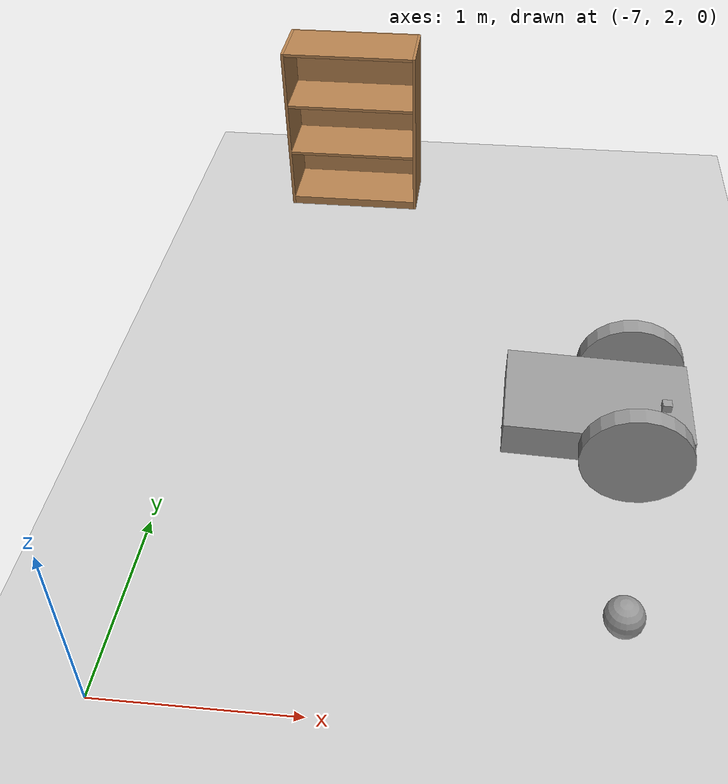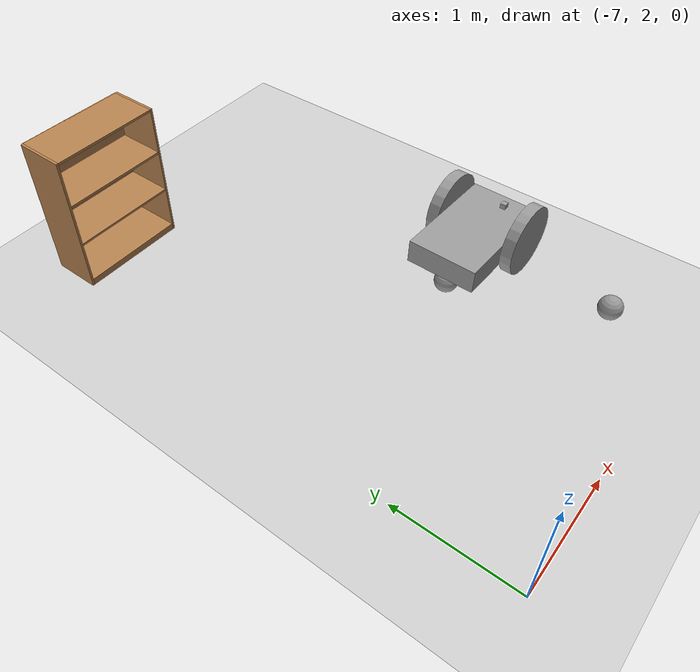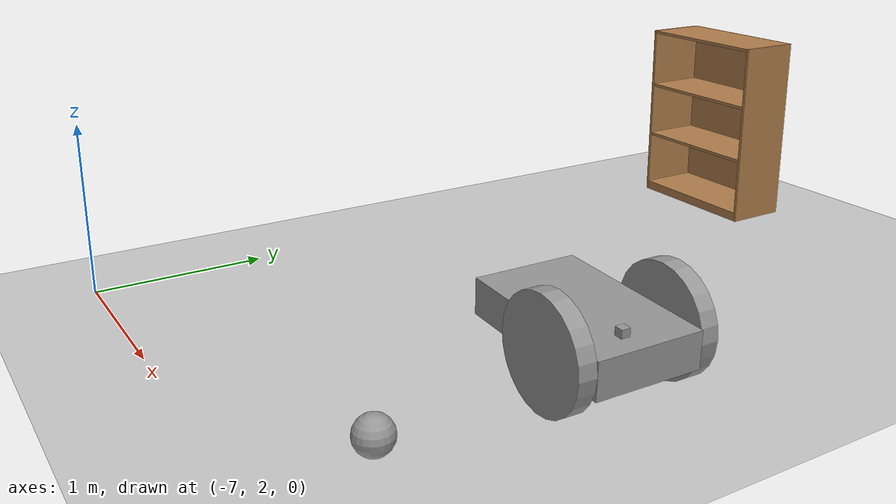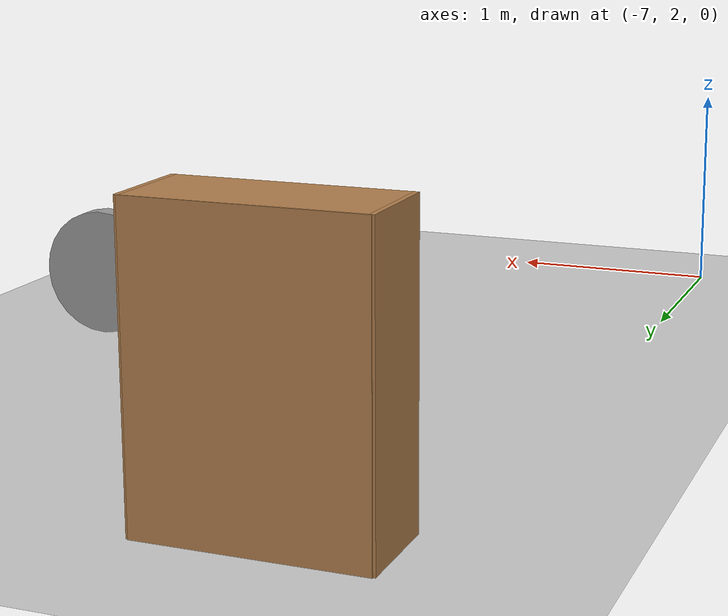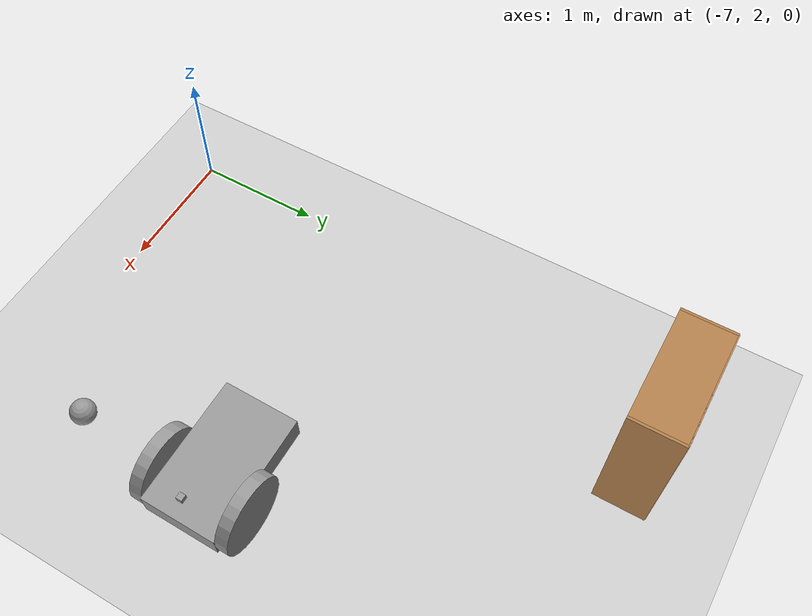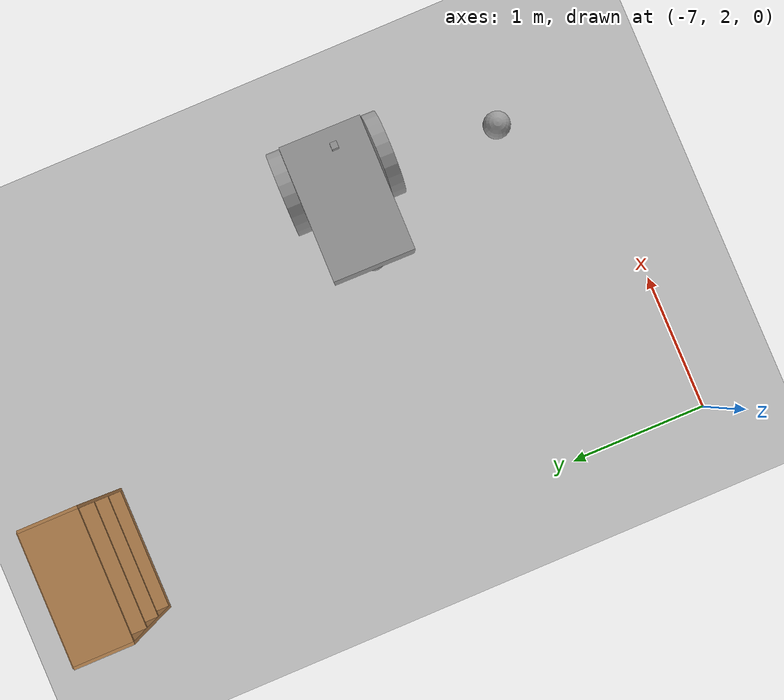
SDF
<sdf version="1.7">
 <world name="default">
  <model name="ground_plane">
   <static>1</static>
   <link name="link">
    <collision name="collision">
     <geometry><plane><normal>0 0 1</normal><size>100 100</size></plane></geometry>
     <surface>
      <contact><collide_bitmask>65535</collide_bitmask></contact>
      <friction><ode><mu>100</mu><mu2>50</mu2></ode></friction>
     </surface>
    </collision>
    <visual name="visual">
     <cast_shadows>0</cast_shadows>
     <geometry><plane><normal>0 0 1</normal><size>100 100</size></plane></geometry>
     <material>
      <script><uri>file://media/materials/scripts/gazebo.material</uri><name>Gazebo/Grey</name></script>
     </material>
    </visual>
   </link>
  </model>
  <model name="bookshelf">
   <static>1</static>
   <link name="link">
    <inertial><mass>1</mass></inertial>
    <collision name="back">
     <pose>0 0.005 0.6 0 -0 0</pose>
     <geometry><box><size>0.9 0.01 1.2</size></box></geometry>
    </collision>
    <visual name="visual1">
     <pose>0 0.005 0.6 0 -0 0</pose>
     <geometry><box><size>0.9 0.01 1.2</size></box></geometry>
     <material>
      <script><uri>file://media/materials/scripts/gazebo.material</uri><name>Gazebo/Wood</name></script>
     </material>
    </visual>
    <collision name="left_side">
     <pose>0.45 -0.195 0.6 0 -0 0</pose>
     <geometry><box><size>0.02 0.4 1.2</size></box></geometry>
    </collision>
    <visual name="visual2">
     <pose>0.45 -0.195 0.6 0 -0 0</pose>
     <geometry><box><size>0.02 0.4 1.2</size></box></geometry>
     <material>
      <script><uri>file://media/materials/scripts/gazebo.material</uri><name>Gazebo/Wood</name></script>
     </material>
    </visual>
    <collision name="right_side">
     <pose>-0.45 -0.195 0.6 0 -0 0</pose>
     <geometry><box><size>0.02 0.4 1.2</size></box></geometry>
    </collision>
    <visual name="visual3">
     <pose>-0.45 -0.195 0.6 0 -0 0</pose>
     <geometry><box><size>0.02 0.4 1.2</size></box></geometry>
     <material>
      <script><uri>file://media/materials/scripts/gazebo.material</uri><name>Gazebo/Wood</name></script>
     </material>
    </visual>
    <collision name="bottom">
     <pose>0 -0.195 0.03 0 -0 0</pose>
     <geometry><box><size>0.88 0.4 0.06</size></box></geometry>
    </collision>
    <visual name="visual4">
     <pose>0 -0.195 0.03 0 -0 0</pose>
     <geometry><box><size>0.88 0.4 0.06</size></box></geometry>
     <material>
      <script><uri>file://media/materials/scripts/gazebo.material</uri><name>Gazebo/Wood</name></script>
     </material>
    </visual>
    <collision name="top">
     <pose>0 -0.195 1.19 0 -0 0</pose>
     <geometry><box><size>0.88 0.4 0.02</size></box></geometry>
    </collision>
    <visual name="visual5">
     <pose>0 -0.195 1.19 0 -0 0</pose>
     <geometry><box><size>0.88 0.4 0.02</size></box></geometry>
     <material>
      <script><uri>file://media/materials/scripts/gazebo.material</uri><name>Gazebo/Wood</name></script>
     </material>
    </visual>
    <collision name="low_shelf">
     <pose>0 -0.195 0.43 0 -0 0</pose>
     <geometry><box><size>0.88 0.4 0.02</size></box></geometry>
    </collision>
    <visual name="visual6">
     <pose>0 -0.195 0.43 0 -0 0</pose>
     <geometry><box><size>0.88 0.4 0.02</size></box></geometry>
     <material>
      <script><uri>file://media/materials/scripts/gazebo.material</uri><name>Gazebo/Wood</name></script>
     </material>
    </visual>
    <collision name="high_shelf">
     <pose>0 -0.195 0.8 0 -0 0</pose>
     <geometry><box><size>0.88 0.4 0.02</size></box></geometry>
    </collision>
    <visual name="visual7">
     <pose>0 -0.195 0.8 0 -0 0</pose>
     <geometry><box><size>0.88 0.4 0.02</size></box></geometry>
     <material>
      <script><uri>file://media/materials/scripts/gazebo.material</uri><name>Gazebo/Wood</name></script>
     </material>
    </visual>
   </link>
   <pose>-6.37527 6.44399 0 0 -0 0</pose>
  </model>
  <model name="mobile_robot_0">
   <link name="link">
    <inertial>
     <mass>1</mass>
     <inertia>
      <ixx>0.166667</ixx>
      <ixy>0</ixy>
      <ixz>0</ixz>
      <iyy>0.166667</iyy>
      <iyz>0</iyz>
      <izz>0.166667</izz>
     </inertia>
    </inertial>
    <visual name="visual">
     <geometry><box><size>1 0.6 0.2</size></box></geometry>
     <material>
      <script><name>Gazebo/Grey</name><uri>file://media/materials/scripts/gazebo.material</uri></script>
      <shader type="vertex"><normal_map>__default__</normal_map></shader>
      <ambient>0.3 0.3 0.3 1</ambient>
      <diffuse>0.7 0.7 0.7 1</diffuse>
      <specular>0.01 0.01 0.01 1</specular>
      <emissive>0 0 0 1</emissive>
     </material>
    </visual>
    <collision name="collision">
     <geometry><box><size>1 0.6 0.2</size></box></geometry>
     <surface>
      <friction>
       <ode><mu>1</mu><mu2>1</mu2><fdir1>0 0 0</fdir1><slip1>0</slip1><slip2>0</slip2></ode>
       <torsional>
        <coefficient>1</coefficient>
        <patch_radius>0</patch_radius>
        <surface_radius>0</surface_radius>
        <use_patch_radius>1</use_patch_radius>
        <ode><slip>0</slip></ode>
       </torsional>
      </friction>
      <bounce><restitution_coefficient>0</restitution_coefficient><threshold>1e+06</threshold></bounce>
      <contact>
       <collide_without_contact>0</collide_without_contact>
       <collide_without_contact_bitmask>1</collide_without_contact_bitmask>
       <collide_bitmask>1</collide_bitmask>
       <ode>
        <soft_cfm>0</soft_cfm>
        <soft_erp>0.2</soft_erp>
        <kp>1e+13</kp>
        <kd>1</kd>
        <max_vel>0.01</max_vel>
        <min_depth>0</min_depth>
       </ode>
       <bullet>
        <split_impulse>1</split_impulse>
        <split_impulse_penetration_threshold>-0.01</split_impulse_penetration_threshold>
        <soft_cfm>0</soft_cfm>
        <soft_erp>0.2</soft_erp>
        <kp>1e+13</kp>
        <kd>1</kd>
       </bullet>
      </contact>
     </surface>
    </collision>
   </link>
   <link name="link_1">
    <inertial>
     <mass>1</mass>
     <inertia><ixx>0.145833</ixx><ixy>0</ixy><ixz>0</ixz><iyy>0.145833</iyy><iyz>0</iyz><izz>0.125</izz></inertia>
    </inertial>
    <pose>0.2 -0.350027 0.02 1.5707 -0 0</pose>
    <visual name="visual">
     <geometry><cylinder><radius>0.3</radius><length>0.1</length></cylinder></geometry>
     <material>
      <lighting>1</lighting>
      <script><uri>file://media/materials/scripts/gazebo.material</uri><name>Gazebo/Grey</name></script>
      <shader type="vertex"><normal_map>__default__</normal_map></shader>
      <ambient>0.3 0.3 0.3 1</ambient>
      <diffuse>0.7 0.7 0.7 1</diffuse>
      <specular>0.01 0.01 0.01 1</specular>
      <emissive>0 0 0 1</emissive>
     </material>
    </visual>
    <collision name="collision">
     <geometry><cylinder><radius>0.3</radius><length>0.1</length></cylinder></geometry>
     <surface>
      <friction>
       <ode><mu>1</mu><mu2>1</mu2><fdir1>0 0 0</fdir1><slip1>0</slip1><slip2>0</slip2></ode>
       <torsional>
        <coefficient>1</coefficient>
        <patch_radius>0</patch_radius>
        <surface_radius>0</surface_radius>
        <use_patch_radius>1</use_patch_radius>
        <ode><slip>0</slip></ode>
       </torsional>
      </friction>
      <bounce><restitution_coefficient>0</restitution_coefficient><threshold>1e+06</threshold></bounce>
      <contact>
       <collide_without_contact>0</collide_without_contact>
       <collide_without_contact_bitmask>1</collide_without_contact_bitmask>
       <collide_bitmask>1</collide_bitmask>
       <ode>
        <soft_cfm>0</soft_cfm>
        <soft_erp>0.2</soft_erp>
        <kp>1e+13</kp>
        <kd>1</kd>
        <max_vel>0.01</max_vel>
        <min_depth>0</min_depth>
       </ode>
       <bullet>
        <split_impulse>1</split_impulse>
        <split_impulse_penetration_threshold>-0.01</split_impulse_penetration_threshold>
        <soft_cfm>0</soft_cfm>
        <soft_erp>0.2</soft_erp>
        <kp>1e+13</kp>
        <kd>1</kd>
       </bullet>
      </contact>
     </surface>
    </collision>
   </link>
   <link name="link_1_clone">
    <inertial>
     <mass>1</mass>
     <inertia><ixx>0.145833</ixx><ixy>0</ixy><ixz>0</ixz><iyy>0.145833</iyy><iyz>0</iyz><izz>0.125</izz></inertia>
    </inertial>
    <pose>0.2 0.35003 0.019997 1.57069 -0 0</pose>
    <visual name="visual">
     <geometry><cylinder><radius>0.3</radius><length>0.1</length></cylinder></geometry>
     <material>
      <lighting>1</lighting>
      <script><uri>file://media/materials/scripts/gazebo.material</uri><name>Gazebo/Grey</name></script>
      <shader type="vertex"><normal_map>__default__</normal_map></shader>
      <ambient>0.3 0.3 0.3 1</ambient>
      <diffuse>0.7 0.7 0.7 1</diffuse>
      <specular>0.01 0.01 0.01 1</specular>
      <emissive>0 0 0 1</emissive>
     </material>
    </visual>
    <collision name="collision">
     <geometry><cylinder><radius>0.3</radius><length>0.1</length></cylinder></geometry>
     <surface>
      <friction>
       <ode><mu>1</mu><mu2>1</mu2><fdir1>0 0 0</fdir1><slip1>0</slip1><slip2>0</slip2></ode>
       <torsional>
        <coefficient>1</coefficient>
        <patch_radius>0</patch_radius>
        <surface_radius>0</surface_radius>
        <use_patch_radius>1</use_patch_radius>
        <ode><slip>0</slip></ode>
       </torsional>
      </friction>
      <bounce><restitution_coefficient>0</restitution_coefficient><threshold>1e+06</threshold></bounce>
      <contact>
       <collide_without_contact>0</collide_without_contact>
       <collide_without_contact_bitmask>1</collide_without_contact_bitmask>
       <collide_bitmask>1</collide_bitmask>
       <ode>
        <soft_cfm>0</soft_cfm>
        <soft_erp>0.2</soft_erp>
        <kp>1e+13</kp>
        <kd>1</kd>
        <max_vel>0.01</max_vel>
        <min_depth>0</min_depth>
       </ode>
       <bullet>
        <split_impulse>1</split_impulse>
        <split_impulse_penetration_threshold>-0.01</split_impulse_penetration_threshold>
        <soft_cfm>0</soft_cfm>
        <soft_erp>0.2</soft_erp>
        <kp>1e+13</kp>
        <kd>1</kd>
       </bullet>
      </contact>
     </surface>
    </collision>
   </link>
   <link name="link_2">
    <inertial>
     <mass>1</mass>
     <inertia><ixx>0.1</ixx><ixy>0</ixy><ixz>0</ixz><iyy>0.1</iyy><iyz>0</iyz><izz>0.1</izz></inertia>
    </inertial>
    <pose>-0.4 -0.020003 -0.2 -1e-05 -0 0</pose>
    <visual name="visual">
     <geometry><sphere><radius>0.1</radius></sphere></geometry>
     <material>
      <lighting>1</lighting>
      <script><uri>file://media/materials/scripts/gazebo.material</uri><name>Gazebo/Grey</name></script>
      <shader type="vertex"><normal_map>__default__</normal_map></shader>
      <ambient>0.3 0.3 0.3 1</ambient>
      <diffuse>0.7 0.7 0.7 1</diffuse>
      <specular>0.01 0.01 0.01 1</specular>
      <emissive>0 0 0 1</emissive>
     </material>
    </visual>
    <collision name="collision">
     <geometry><sphere><radius>0.1</radius></sphere></geometry>
     <surface>
      <friction>
       <ode><mu>1</mu><mu2>1</mu2><fdir1>0 0 0</fdir1><slip1>0</slip1><slip2>0</slip2></ode>
       <torsional>
        <coefficient>1</coefficient>
        <patch_radius>0</patch_radius>
        <surface_radius>0</surface_radius>
        <use_patch_radius>1</use_patch_radius>
        <ode><slip>0</slip></ode>
       </torsional>
      </friction>
      <bounce><restitution_coefficient>0</restitution_coefficient><threshold>1e+06</threshold></bounce>
      <contact>
       <collide_without_contact>0</collide_without_contact>
       <collide_without_contact_bitmask>1</collide_without_contact_bitmask>
       <collide_bitmask>1</collide_bitmask>
       <ode>
        <soft_cfm>0</soft_cfm>
        <soft_erp>0.2</soft_erp>
        <kp>1e+13</kp>
        <kd>1</kd>
        <max_vel>0.01</max_vel>
        <min_depth>0</min_depth>
       </ode>
       <bullet>
        <split_impulse>1</split_impulse>
        <split_impulse_penetration_threshold>-0.01</split_impulse_penetration_threshold>
        <soft_cfm>0</soft_cfm>
        <soft_erp>0.2</soft_erp>
        <kp>1e+13</kp>
        <kd>1</kd>
       </bullet>
      </contact>
     </surface>
    </collision>
   </link>
   <link name="link_3">
    <inertial>
     <mass>1</mass>
     <inertia>
      <ixx>0.166667</ixx>
      <ixy>0</ixy>
      <ixz>0</ixz>
      <iyy>0.166667</iyy>
      <iyz>0</iyz>
      <izz>0.166667</izz>
     </inertia>
    </inertial>
    <pose>0.360001 -0.057499 0.12 -1e-05 -0 0</pose>
    <visual name="visual">
     <geometry><box><size>0.05 0.05 0.05</size></box></geometry>
     <material>
      <lighting>1</lighting>
      <script><uri>file://media/materials/scripts/gazebo.material</uri><name>Gazebo/Grey</name></script>
      <shader type="vertex"><normal_map>__default__</normal_map></shader>
      <ambient>0.3 0.3 0.3 1</ambient>
      <diffuse>0.7 0.7 0.7 1</diffuse>
      <specular>0.01 0.01 0.01 1</specular>
      <emissive>0 0 0 1</emissive>
     </material>
    </visual>
    <collision name="collision">
     <geometry><box><size>0.05 0.05 0.05</size></box></geometry>
     <surface>
      <friction>
       <ode><mu>1</mu><mu2>1</mu2><fdir1>0 0 0</fdir1><slip1>0</slip1><slip2>0</slip2></ode>
       <torsional>
        <coefficient>1</coefficient>
        <patch_radius>0</patch_radius>
        <surface_radius>0</surface_radius>
        <use_patch_radius>1</use_patch_radius>
        <ode><slip>0</slip></ode>
       </torsional>
      </friction>
      <bounce><restitution_coefficient>0</restitution_coefficient><threshold>1e+06</threshold></bounce>
      <contact>
       <collide_without_contact>0</collide_without_contact>
       <collide_without_contact_bitmask>1</collide_without_contact_bitmask>
       <collide_bitmask>1</collide_bitmask>
       <ode>
        <soft_cfm>0</soft_cfm>
        <soft_erp>0.2</soft_erp>
        <kp>1e+13</kp>
        <kd>1</kd>
        <max_vel>0.01</max_vel>
        <min_depth>0</min_depth>
       </ode>
       <bullet>
        <split_impulse>1</split_impulse>
        <split_impulse_penetration_threshold>-0.01</split_impulse_penetration_threshold>
        <soft_cfm>0</soft_cfm>
        <soft_erp>0.2</soft_erp>
        <kp>1e+13</kp>
        <kd>1</kd>
       </bullet>
      </contact>
     </surface>
    </collision>
   </link>
   <joint name="link_JOINT_1" type="revolute">
    <parent>link</parent>
    <child>link_1</child>
    <axis>
     <xyz>0 0 -1</xyz>
     <limit>
      <lower>-1.79769e+308</lower>
      <upper>1.79769e+308</upper>
      <effort>-1</effort>
      <velocity>-1</velocity>
     </limit>
     <dynamics>
      <spring_reference>0</spring_reference>
      <spring_stiffness>0</spring_stiffness>
      <damping>0</damping>
      <friction>0</friction>
     </dynamics>
    </axis>
    <physics>
     <ode><limit><cfm>0</cfm><erp>0.2</erp></limit><suspension><cfm>0</cfm><erp>0.2</erp></suspension></ode>
    </physics>
   </joint>
   <joint name="link_JOINT_2" type="revolute">
    <parent>link</parent>
    <child>link_1_clone</child>
    <axis>
     <xyz>0 0 1</xyz>
     <limit>
      <lower>-1.79769e+308</lower>
      <upper>1.79769e+308</upper>
      <effort>-1</effort>
      <velocity>-1</velocity>
     </limit>
     <dynamics>
      <spring_reference>0</spring_reference>
      <spring_stiffness>0</spring_stiffness>
      <damping>0</damping>
     </dynamics>
    </axis>
    <physics>
     <ode><limit><cfm>0</cfm><erp>0.2</erp></limit><suspension><cfm>0</cfm><erp>0.2</erp></suspension></ode>
    </physics>
   </joint>
   <joint name="link_JOINT_3" type="ball">
    <parent>link</parent>
    <child>link_2</child>
    <physics>
     <ode><limit><cfm>0</cfm><erp>0.2</erp></limit><suspension><cfm>0</cfm><erp>0.2</erp></suspension></ode>
    </physics>
   </joint>
   <joint name="link_JOINT_4" type="fixed">
    <parent>link</parent>
    <child>link_3</child>
    <physics>
     <ode><limit><cfm>0</cfm><erp>0.2</erp></limit><suspension><cfm>0</cfm><erp>0.2</erp></suspension></ode>
    </physics>
   </joint>
   <static>0</static>
   <pose>-4.70023 3.77336 0.286642 5e-06 0.033128 -0.010384</pose>
  </model>
  <model name="white_ball">
   <link name="link_1">
    <inertial>
     <mass>1</mass>
     <inertia><ixx>0.1</ixx><ixy>0</ixy><ixz>0</ixz><iyy>0.1</iyy><iyz>0</iyz><izz>0.1</izz></inertia>
    </inertial>
    <pose>-0 -2e-06 -0 0 -0 0</pose>
    <visual name="visual">
     <geometry><sphere><radius>0.1</radius></sphere></geometry>
     <material>
      <lighting>1</lighting>
      <script><uri>file://media/materials/scripts/gazebo.material</uri><name>Gazebo/Grey</name></script>
      <shader type="pixel"><normal_map>__default__</normal_map></shader>
      <ambient>1 1 1 1</ambient>
      <diffuse>1 1 1 1</diffuse>
      <specular>1 1 1 1</specular>
      <emissive>0 0 0 1</emissive>
     </material>
    </visual>
    <collision name="collision">
     <geometry><sphere><radius>0.1</radius></sphere></geometry>
     <surface>
      <friction>
       <ode><mu>1</mu><mu2>1</mu2><fdir1>0 0 0</fdir1><slip1>0</slip1><slip2>0</slip2></ode>
       <torsional>
        <coefficient>1</coefficient>
        <patch_radius>0</patch_radius>
        <surface_radius>0</surface_radius>
        <use_patch_radius>1</use_patch_radius>
        <ode><slip>0</slip></ode>
       </torsional>
      </friction>
      <bounce><restitution_coefficient>0</restitution_coefficient><threshold>1e+06</threshold></bounce>
      <contact>
       <collide_without_contact>0</collide_without_contact>
       <collide_without_contact_bitmask>1</collide_without_contact_bitmask>
       <collide_bitmask>1</collide_bitmask>
       <ode>
        <soft_cfm>0</soft_cfm>
        <soft_erp>0.2</soft_erp>
        <kp>1e+13</kp>
        <kd>1</kd>
        <max_vel>0.01</max_vel>
        <min_depth>0</min_depth>
       </ode>
       <bullet>
        <split_impulse>1</split_impulse>
        <split_impulse_penetration_threshold>-0.01</split_impulse_penetration_threshold>
        <soft_cfm>0</soft_cfm>
        <soft_erp>0.2</soft_erp>
        <kp>1e+13</kp>
        <kd>1</kd>
       </bullet>
      </contact>
     </surface>
    </collision>
   </link>
   <static>0</static>
   <pose>-4.58796 2.58345 0.1 0 -0 0</pose>
  </model>
 </world>
</sdf>
